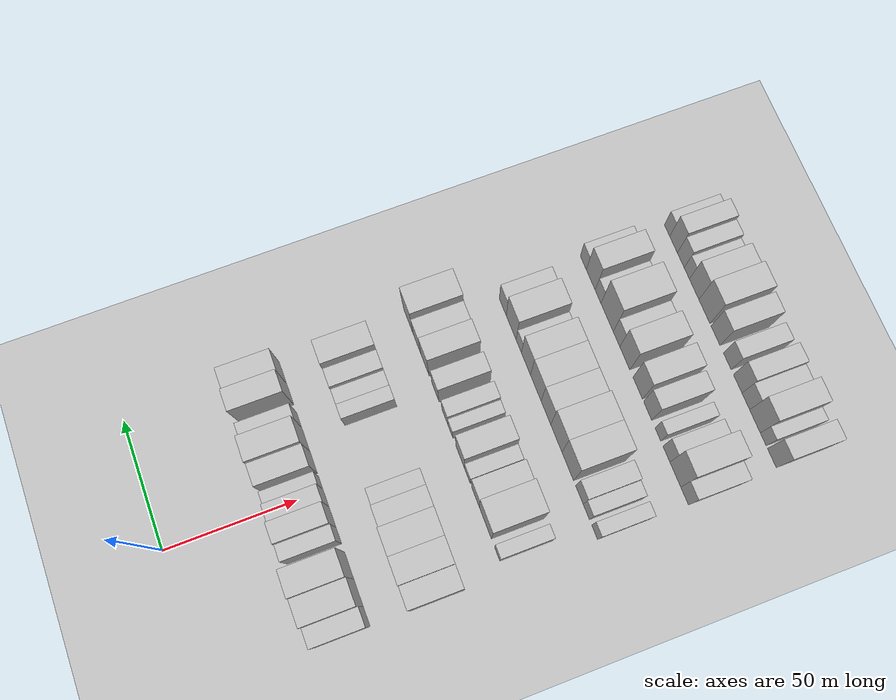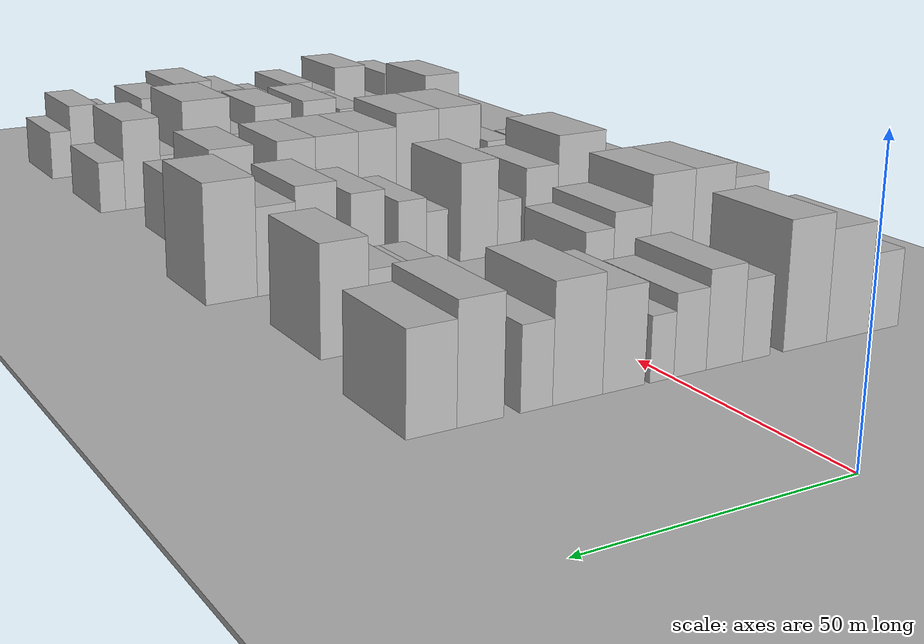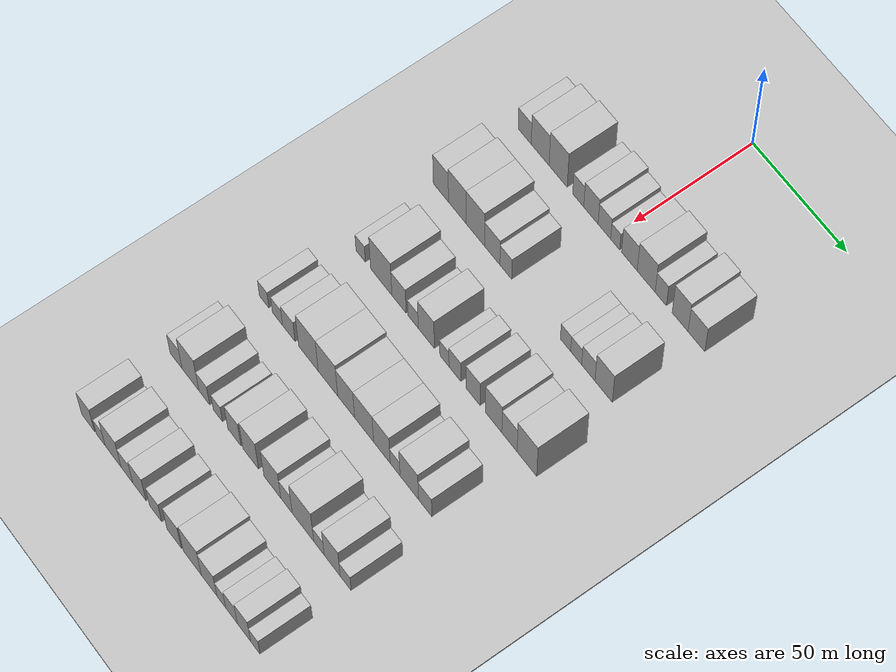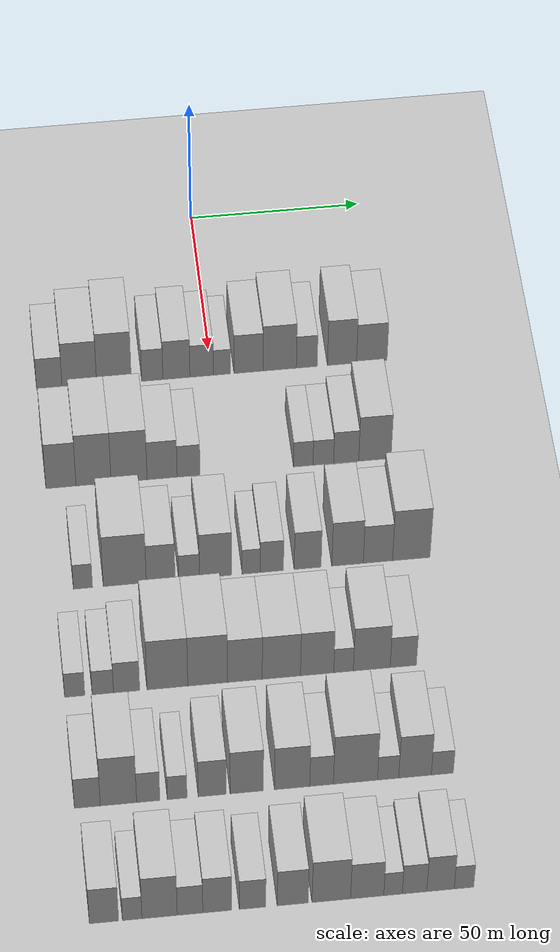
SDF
<sdf version="1.6">
 <world name="default">
  <include><name>ground_plane_1</name><uri>model://HANNAS_ground_plane</uri></include>
  <include>
   <name>ground_plane_2</name>
   <uri>model://HANNAS_ground_plane</uri>
   <pose>100 0 0  0 0 0</pose>
  </include>
  <model name="building_59">
   <static>1</static>
   <pose>50.0000 -46.9316 0 0.000000 0.000000 0.000000</pose>
   <link name="link">
    <pose>0 0 7.50 0 0 0</pose>
    <collision name="collision"><geometry><box><size>20.0000 7.3328 15.0000</size></box></geometry></collision>
    <visual name="visual">
     <cast_shadows>0</cast_shadows>
     <geometry><box><size>20.0000 7.3328 15.0000</size></box></geometry>
     <material>
      <script>
       <uri>model://HANNAS_wall/materials/scripts</uri>
       <uri>model://HANNAS_wall/materials/textures</uri>
       <name>vrc/HANNAS_wall</name>
      </script>
     </material>
    </visual>
   </link>
  </model>
  <model name="building_60">
   <static>1</static>
   <pose>50.0000 -38.2775 0 0.000000 0.000000 0.000000</pose>
   <link name="link">
    <pose>0 0 10.50 0 0 0</pose>
    <collision name="collision"><geometry><box><size>20.0000 9.9754 21.0000</size></box></geometry></collision>
    <visual name="visual">
     <cast_shadows>0</cast_shadows>
     <geometry><box><size>20.0000 9.9754 21.0000</size></box></geometry>
     <material>
      <script>
       <uri>model://HANNAS_wall/materials/scripts</uri>
       <uri>model://HANNAS_wall/materials/textures</uri>
       <name>vrc/HANNAS_wall</name>
      </script>
     </material>
    </visual>
   </link>
  </model>
  <model name="building_61">
   <static>1</static>
   <pose>50.0000 -28.2790 0 0.000000 0.000000 0.000000</pose>
   <link name="link">
    <pose>0 0 12.00 0 0 0</pose>
    <collision name="collision"><geometry><box><size>20.0000 10.0216 24.0000</size></box></geometry></collision>
    <visual name="visual">
     <cast_shadows>0</cast_shadows>
     <geometry><box><size>20.0000 10.0216 24.0000</size></box></geometry>
     <material>
      <script>
       <uri>model://HANNAS_wall/materials/scripts</uri>
       <uri>model://HANNAS_wall/materials/textures</uri>
       <name>vrc/HANNAS_wall</name>
      </script>
     </material>
    </visual>
   </link>
  </model>
  <model name="building_62">
   <static>1</static>
   <pose>50.0000 -17.2215 0 0.000000 0.000000 0.000000</pose>
   <link name="link">
    <pose>0 0 7.50 0 0 0</pose>
    <collision name="collision"><geometry><box><size>20.0000 6.0934 15.0000</size></box></geometry></collision>
    <visual name="visual">
     <cast_shadows>0</cast_shadows>
     <geometry><box><size>20.0000 6.0934 15.0000</size></box></geometry>
     <material>
      <script>
       <uri>model://HANNAS_wall/materials/scripts</uri>
       <uri>model://HANNAS_wall/materials/textures</uri>
       <name>vrc/HANNAS_wall</name>
      </script>
     </material>
    </visual>
   </link>
  </model>
  <model name="building_63">
   <static>1</static>
   <pose>50.0000 -10.2483 0 0.000000 0.000000 0.000000</pose>
   <link name="link">
    <pose>0 0 9.00 0 0 0</pose>
    <collision name="collision"><geometry><box><size>20.0000 7.8529 18.0000</size></box></geometry></collision>
    <visual name="visual">
     <cast_shadows>0</cast_shadows>
     <geometry><box><size>20.0000 7.8529 18.0000</size></box></geometry>
     <material>
      <script>
       <uri>model://HANNAS_wall/materials/scripts</uri>
       <uri>model://HANNAS_wall/materials/textures</uri>
       <name>vrc/HANNAS_wall</name>
      </script>
     </material>
    </visual>
   </link>
  </model>
  <model name="building_64">
   <static>1</static>
   <pose>50.0000 -2.9109 0 0.000000 0.000000 0.000000</pose>
   <link name="link">
    <pose>0 0 7.50 0 0 0</pose>
    <collision name="collision"><geometry><box><size>20.0000 6.8220 15.0000</size></box></geometry></collision>
    <visual name="visual">
     <cast_shadows>0</cast_shadows>
     <geometry><box><size>20.0000 6.8220 15.0000</size></box></geometry>
     <material>
      <script>
       <uri>model://HANNAS_wall/materials/scripts</uri>
       <uri>model://HANNAS_wall/materials/textures</uri>
       <name>vrc/HANNAS_wall</name>
      </script>
     </material>
    </visual>
   </link>
  </model>
  <model name="building_65">
   <static>1</static>
   <pose>50.0000 2.9775 0 0.000000 0.000000 0.000000</pose>
   <link name="link">
    <pose>0 0 6.00 0 0 0</pose>
    <collision name="collision"><geometry><box><size>20.0000 4.9548 12.0000</size></box></geometry></collision>
    <visual name="visual">
     <cast_shadows>0</cast_shadows>
     <geometry><box><size>20.0000 4.9548 12.0000</size></box></geometry>
     <material>
      <script>
       <uri>model://HANNAS_wall/materials/scripts</uri>
       <uri>model://HANNAS_wall/materials/textures</uri>
       <name>vrc/HANNAS_wall</name>
      </script>
     </material>
    </visual>
   </link>
  </model>
  <model name="building_66">
   <static>1</static>
   <pose>50.0000 10.6718 0 0.000000 0.000000 0.000000</pose>
   <link name="link">
    <pose>0 0 9.00 0 0 0</pose>
    <collision name="collision"><geometry><box><size>20.0000 8.4336 18.0000</size></box></geometry></collision>
    <visual name="visual">
     <cast_shadows>0</cast_shadows>
     <geometry><box><size>20.0000 8.4336 18.0000</size></box></geometry>
     <material>
      <script>
       <uri>model://HANNAS_wall/materials/scripts</uri>
       <uri>model://HANNAS_wall/materials/textures</uri>
       <name>vrc/HANNAS_wall</name>
      </script>
     </material>
    </visual>
   </link>
  </model>
  <model name="building_67">
   <static>1</static>
   <pose>50.0000 19.7252 0 0.000000 0.000000 0.000000</pose>
   <link name="link">
    <pose>0 0 10.50 0 0 0</pose>
    <collision name="collision"><geometry><box><size>20.0000 9.6732 21.0000</size></box></geometry></collision>
    <visual name="visual">
     <cast_shadows>0</cast_shadows>
     <geometry><box><size>20.0000 9.6732 21.0000</size></box></geometry>
     <material>
      <script>
       <uri>model://HANNAS_wall/materials/scripts</uri>
       <uri>model://HANNAS_wall/materials/textures</uri>
       <name>vrc/HANNAS_wall</name>
      </script>
     </material>
    </visual>
   </link>
  </model>
  <model name="building_68">
   <static>1</static>
   <pose>50.0000 27.5824 0 0.000000 0.000000 0.000000</pose>
   <link name="link">
    <pose>0 0 7.50 0 0 0</pose>
    <collision name="collision"><geometry><box><size>20.0000 6.0413 15.0000</size></box></geometry></collision>
    <visual name="visual">
     <cast_shadows>0</cast_shadows>
     <geometry><box><size>20.0000 6.0413 15.0000</size></box></geometry>
     <material>
      <script>
       <uri>model://HANNAS_wall/materials/scripts</uri>
       <uri>model://HANNAS_wall/materials/textures</uri>
       <name>vrc/HANNAS_wall</name>
      </script>
     </material>
    </visual>
   </link>
  </model>
  <model name="building_69">
   <static>1</static>
   <pose>50.0000 37.8333 0 0.000000 0.000000 0.000000</pose>
   <link name="link">
    <pose>0 0 10.50 0 0 0</pose>
    <collision name="collision"><geometry><box><size>20.0000 8.4605 21.0000</size></box></geometry></collision>
    <visual name="visual">
     <cast_shadows>0</cast_shadows>
     <geometry><box><size>20.0000 8.4605 21.0000</size></box></geometry>
     <material>
      <script>
       <uri>model://HANNAS_wall/materials/scripts</uri>
       <uri>model://HANNAS_wall/materials/textures</uri>
       <name>vrc/HANNAS_wall</name>
      </script>
     </material>
    </visual>
   </link>
  </model>
  <model name="building_70">
   <static>1</static>
   <pose>50.0000 46.5089 0 0.000000 0.000000 0.000000</pose>
   <link name="link">
    <pose>0 0 9.00 0 0 0</pose>
    <collision name="collision"><geometry><box><size>20.0000 8.8906 18.0000</size></box></geometry></collision>
    <visual name="visual">
     <cast_shadows>0</cast_shadows>
     <geometry><box><size>20.0000 8.8906 18.0000</size></box></geometry>
     <material>
      <script>
       <uri>model://HANNAS_wall/materials/scripts</uri>
       <uri>model://HANNAS_wall/materials/textures</uri>
       <name>vrc/HANNAS_wall</name>
      </script>
     </material>
    </visual>
   </link>
  </model>
  <model name="building_187">
   <static>1</static>
   <pose>85.0000 -46.3701 0 0.000000 0.000000 0.000000</pose>
   <link name="link">
    <pose>0 0 10.50 0 0 0</pose>
    <collision name="collision"><geometry><box><size>20.0000 8.5229 21.0000</size></box></geometry></collision>
    <visual name="visual">
     <cast_shadows>0</cast_shadows>
     <geometry><box><size>20.0000 8.5229 21.0000</size></box></geometry>
     <material>
      <script>
       <uri>model://HANNAS_wall/materials/scripts</uri>
       <uri>model://HANNAS_wall/materials/textures</uri>
       <name>vrc/HANNAS_wall</name>
      </script>
     </material>
    </visual>
   </link>
  </model>
  <model name="building_188">
   <static>1</static>
   <pose>85.0000 -37.1476 0 0.000000 0.000000 0.000000</pose>
   <link name="link">
    <pose>0 0 12.00 0 0 0</pose>
    <collision name="collision"><geometry><box><size>20.0000 9.9221 24.0000</size></box></geometry></collision>
    <visual name="visual">
     <cast_shadows>0</cast_shadows>
     <geometry><box><size>20.0000 9.9221 24.0000</size></box></geometry>
     <material>
      <script>
       <uri>model://HANNAS_wall/materials/scripts</uri>
       <uri>model://HANNAS_wall/materials/textures</uri>
       <name>vrc/HANNAS_wall</name>
      </script>
     </material>
    </visual>
   </link>
  </model>
  <model name="building_189">
   <static>1</static>
   <pose>85.0000 -27.0915 0 0.000000 0.000000 0.000000</pose>
   <link name="link">
    <pose>0 0 12.00 0 0 0</pose>
    <collision name="collision"><geometry><box><size>20.0000 10.1902 24.0000</size></box></geometry></collision>
    <visual name="visual">
     <cast_shadows>0</cast_shadows>
     <geometry><box><size>20.0000 10.1902 24.0000</size></box></geometry>
     <material>
      <script>
       <uri>model://HANNAS_wall/materials/scripts</uri>
       <uri>model://HANNAS_wall/materials/textures</uri>
       <name>vrc/HANNAS_wall</name>
      </script>
     </material>
    </visual>
   </link>
  </model>
  <model name="building_190">
   <static>1</static>
   <pose>85.0000 -17.7223 0 0.000000 0.000000 0.000000</pose>
   <link name="link">
    <pose>0 0 9.00 0 0 0</pose>
    <collision name="collision"><geometry><box><size>20.0000 8.5484 18.0000</size></box></geometry></collision>
    <visual name="visual">
     <cast_shadows>0</cast_shadows>
     <geometry><box><size>20.0000 8.5484 18.0000</size></box></geometry>
     <material>
      <script>
       <uri>model://HANNAS_wall/materials/scripts</uri>
       <uri>model://HANNAS_wall/materials/textures</uri>
       <name>vrc/HANNAS_wall</name>
      </script>
     </material>
    </visual>
   </link>
  </model>
  <model name="building_191">
   <static>1</static>
   <pose>85.0000 -10.2076 0 0.000000 0.000000 0.000000</pose>
   <link name="link">
    <pose>0 0 7.50 0 0 0</pose>
    <collision name="collision"><geometry><box><size>20.0000 6.4809 15.0000</size></box></geometry></collision>
    <visual name="visual">
     <cast_shadows>0</cast_shadows>
     <geometry><box><size>20.0000 6.4809 15.0000</size></box></geometry>
     <material>
      <script>
       <uri>model://HANNAS_wall/materials/scripts</uri>
       <uri>model://HANNAS_wall/materials/textures</uri>
       <name>vrc/HANNAS_wall</name>
      </script>
     </material>
    </visual>
   </link>
  </model>
  <model name="building_192">
   <static>1</static>
   <pose>85.0000 22.4130 0 0.000000 0.000000 0.000000</pose>
   <link name="link">
    <pose>0 0 6.00 0 0 0</pose>
    <collision name="collision"><geometry><box><size>20.0000 5.5868 12.0000</size></box></geometry></collision>
    <visual name="visual">
     <cast_shadows>0</cast_shadows>
     <geometry><box><size>20.0000 5.5868 12.0000</size></box></geometry>
     <material>
      <script>
       <uri>model://HANNAS_wall/materials/scripts</uri>
       <uri>model://HANNAS_wall/materials/textures</uri>
       <name>vrc/HANNAS_wall</name>
      </script>
     </material>
    </visual>
   </link>
  </model>
  <model name="building_193">
   <static>1</static>
   <pose>85.0000 28.1377 0 0.000000 0.000000 0.000000</pose>
   <link name="link">
    <pose>0 0 6.00 0 0 0</pose>
    <collision name="collision"><geometry><box><size>20.0000 5.8626 12.0000</size></box></geometry></collision>
    <visual name="visual">
     <cast_shadows>0</cast_shadows>
     <geometry><box><size>20.0000 5.8626 12.0000</size></box></geometry>
     <material>
      <script>
       <uri>model://HANNAS_wall/materials/scripts</uri>
       <uri>model://HANNAS_wall/materials/textures</uri>
       <name>vrc/HANNAS_wall</name>
      </script>
     </material>
    </visual>
   </link>
  </model>
  <model name="building_194">
   <static>1</static>
   <pose>85.0000 34.6536 0 0.000000 0.000000 0.000000</pose>
   <link name="link">
    <pose>0 0 7.50 0 0 0</pose>
    <collision name="collision"><geometry><box><size>20.0000 7.1690 15.0000</size></box></geometry></collision>
    <visual name="visual">
     <cast_shadows>0</cast_shadows>
     <geometry><box><size>20.0000 7.1690 15.0000</size></box></geometry>
     <material>
      <script>
       <uri>model://HANNAS_wall/materials/scripts</uri>
       <uri>model://HANNAS_wall/materials/textures</uri>
       <name>vrc/HANNAS_wall</name>
      </script>
     </material>
    </visual>
   </link>
  </model>
  <model name="building_195">
   <static>1</static>
   <pose>85.0000 42.8573 0 0.000000 0.000000 0.000000</pose>
   <link name="link">
    <pose>0 0 10.50 0 0 0</pose>
    <collision name="collision"><geometry><box><size>20.0000 9.2384 21.0000</size></box></geometry></collision>
    <visual name="visual">
     <cast_shadows>0</cast_shadows>
     <geometry><box><size>20.0000 9.2384 21.0000</size></box></geometry>
     <material>
      <script>
       <uri>model://HANNAS_wall/materials/scripts</uri>
       <uri>model://HANNAS_wall/materials/textures</uri>
       <name>vrc/HANNAS_wall</name>
      </script>
     </material>
    </visual>
   </link>
  </model>
  <model name="building_314">
   <static>1</static>
   <pose>120.0000 -43.0307 0 0.000000 0.000000 0.000000</pose>
   <link name="link">
    <pose>0 0 6.00 0 0 0</pose>
    <collision name="collision"><geometry><box><size>20.0000 5.2960 12.0000</size></box></geometry></collision>
    <visual name="visual">
     <cast_shadows>0</cast_shadows>
     <geometry><box><size>20.0000 5.2960 12.0000</size></box></geometry>
     <material>
      <script>
       <uri>model://HANNAS_wall/materials/scripts</uri>
       <uri>model://HANNAS_wall/materials/textures</uri>
       <name>vrc/HANNAS_wall</name>
      </script>
     </material>
    </visual>
   </link>
  </model>
  <model name="building_315">
   <static>1</static>
   <pose>120.0000 -31.4217 0 0.000000 0.000000 0.000000</pose>
   <link name="link">
    <pose>0 0 12.00 0 0 0</pose>
    <collision name="collision"><geometry><box><size>20.0000 11.9218 24.0000</size></box></geometry></collision>
    <visual name="visual">
     <cast_shadows>0</cast_shadows>
     <geometry><box><size>20.0000 11.9218 24.0000</size></box></geometry>
     <material>
      <script>
       <uri>model://HANNAS_wall/materials/scripts</uri>
       <uri>model://HANNAS_wall/materials/textures</uri>
       <name>vrc/HANNAS_wall</name>
      </script>
     </material>
    </visual>
   </link>
  </model>
  <model name="building_316">
   <static>1</static>
   <pose>120.0000 -21.4583 0 0.000000 0.000000 0.000000</pose>
   <link name="link">
    <pose>0 0 9.00 0 0 0</pose>
    <collision name="collision"><geometry><box><size>20.0000 8.0050 18.0000</size></box></geometry></collision>
    <visual name="visual">
     <cast_shadows>0</cast_shadows>
     <geometry><box><size>20.0000 8.0050 18.0000</size></box></geometry>
     <material>
      <script>
       <uri>model://HANNAS_wall/materials/scripts</uri>
       <uri>model://HANNAS_wall/materials/textures</uri>
       <name>vrc/HANNAS_wall</name>
      </script>
     </material>
    </visual>
   </link>
  </model>
  <model name="building_317">
   <static>1</static>
   <pose>120.0000 -13.5691 0 0.000000 0.000000 0.000000</pose>
   <link name="link">
    <pose>0 0 6.00 0 0 0</pose>
    <collision name="collision"><geometry><box><size>20.0000 5.7735 12.0000</size></box></geometry></collision>
    <visual name="visual">
     <cast_shadows>0</cast_shadows>
     <geometry><box><size>20.0000 5.7735 12.0000</size></box></geometry>
     <material>
      <script>
       <uri>model://HANNAS_wall/materials/scripts</uri>
       <uri>model://HANNAS_wall/materials/textures</uri>
       <name>vrc/HANNAS_wall</name>
      </script>
     </material>
    </visual>
   </link>
  </model>
  <model name="building_318">
   <static>1</static>
   <pose>120.0000 -6.2227 0 0.000000 0.000000 0.000000</pose>
   <link name="link">
    <pose>0 0 10.50 0 0 0</pose>
    <collision name="collision"><geometry><box><size>20.0000 8.9193 21.0000</size></box></geometry></collision>
    <visual name="visual">
     <cast_shadows>0</cast_shadows>
     <geometry><box><size>20.0000 8.9193 21.0000</size></box></geometry>
     <material>
      <script>
       <uri>model://HANNAS_wall/materials/scripts</uri>
       <uri>model://HANNAS_wall/materials/textures</uri>
       <name>vrc/HANNAS_wall</name>
      </script>
     </material>
    </visual>
   </link>
  </model>
  <model name="building_319">
   <static>1</static>
   <pose>120.0000 3.7449 0 0.000000 0.000000 0.000000</pose>
   <link name="link">
    <pose>0 0 6.00 0 0 0</pose>
    <collision name="collision"><geometry><box><size>20.0000 5.0158 12.0000</size></box></geometry></collision>
    <visual name="visual">
     <cast_shadows>0</cast_shadows>
     <geometry><box><size>20.0000 5.0158 12.0000</size></box></geometry>
     <material>
      <script>
       <uri>model://HANNAS_wall/materials/scripts</uri>
       <uri>model://HANNAS_wall/materials/textures</uri>
       <name>vrc/HANNAS_wall</name>
      </script>
     </material>
    </visual>
   </link>
  </model>
  <model name="building_320">
   <static>1</static>
   <pose>120.0000 9.4917 0 0.000000 0.000000 0.000000</pose>
   <link name="link">
    <pose>0 0 7.50 0 0 0</pose>
    <collision name="collision"><geometry><box><size>20.0000 6.4779 15.0000</size></box></geometry></collision>
    <visual name="visual">
     <cast_shadows>0</cast_shadows>
     <geometry><box><size>20.0000 6.4779 15.0000</size></box></geometry>
     <material>
      <script>
       <uri>model://HANNAS_wall/materials/scripts</uri>
       <uri>model://HANNAS_wall/materials/textures</uri>
       <name>vrc/HANNAS_wall</name>
      </script>
     </material>
    </visual>
   </link>
  </model>
  <model name="building_321">
   <static>1</static>
   <pose>120.0000 19.4871 0 0.000000 0.000000 0.000000</pose>
   <link name="link">
    <pose>0 0 9.00 0 0 0</pose>
    <collision name="collision"><geometry><box><size>20.0000 7.5130 18.0000</size></box></geometry></collision>
    <visual name="visual">
     <cast_shadows>0</cast_shadows>
     <geometry><box><size>20.0000 7.5130 18.0000</size></box></geometry>
     <material>
      <script>
       <uri>model://HANNAS_wall/materials/scripts</uri>
       <uri>model://HANNAS_wall/materials/textures</uri>
       <name>vrc/HANNAS_wall</name>
      </script>
     </material>
    </visual>
   </link>
  </model>
  <model name="building_322">
   <static>1</static>
   <pose>120.0000 30.6438 0 0.000000 0.000000 0.000000</pose>
   <link name="link">
    <pose>0 0 10.50 0 0 0</pose>
    <collision name="collision"><geometry><box><size>20.0000 8.8005 21.0000</size></box></geometry></collision>
    <visual name="visual">
     <cast_shadows>0</cast_shadows>
     <geometry><box><size>20.0000 8.8005 21.0000</size></box></geometry>
     <material>
      <script>
       <uri>model://HANNAS_wall/materials/scripts</uri>
       <uri>model://HANNAS_wall/materials/textures</uri>
       <name>vrc/HANNAS_wall</name>
      </script>
     </material>
    </visual>
   </link>
  </model>
  <model name="building_323">
   <static>1</static>
   <pose>120.0000 39.1478 0 0.000000 0.000000 0.000000</pose>
   <link name="link">
    <pose>0 0 9.00 0 0 0</pose>
    <collision name="collision"><geometry><box><size>20.0000 8.2075 18.0000</size></box></geometry></collision>
    <visual name="visual">
     <cast_shadows>0</cast_shadows>
     <geometry><box><size>20.0000 8.2075 18.0000</size></box></geometry>
     <material>
      <script>
       <uri>model://HANNAS_wall/materials/scripts</uri>
       <uri>model://HANNAS_wall/materials/textures</uri>
       <name>vrc/HANNAS_wall</name>
      </script>
     </material>
    </visual>
   </link>
  </model>
  <model name="building_324">
   <static>1</static>
   <pose>120.0000 48.4950 0 0.000000 0.000000 0.000000</pose>
   <link name="link">
    <pose>0 0 12.00 0 0 0</pose>
    <collision name="collision"><geometry><box><size>20.0000 10.4868 24.0000</size></box></geometry></collision>
    <visual name="visual">
     <cast_shadows>0</cast_shadows>
     <geometry><box><size>20.0000 10.4868 24.0000</size></box></geometry>
     <material>
      <script>
       <uri>model://HANNAS_wall/materials/scripts</uri>
       <uri>model://HANNAS_wall/materials/textures</uri>
       <name>vrc/HANNAS_wall</name>
      </script>
     </material>
    </visual>
   </link>
  </model>
  <model name="building_426">
   <static>1</static>
   <pose>155.0000 -48.1531 0 0.000000 0.000000 0.000000</pose>
   <link name="link">
    <pose>0 0 6.00 0 0 0</pose>
    <collision name="collision"><geometry><box><size>20.0000 5.4719 12.0000</size></box></geometry></collision>
    <visual name="visual">
     <cast_shadows>0</cast_shadows>
     <geometry><box><size>20.0000 5.4719 12.0000</size></box></geometry>
     <material>
      <script>
       <uri>model://HANNAS_wall/materials/scripts</uri>
       <uri>model://HANNAS_wall/materials/textures</uri>
       <name>vrc/HANNAS_wall</name>
      </script>
     </material>
    </visual>
   </link>
  </model>
  <model name="building_427">
   <static>1</static>
   <pose>155.0000 -40.5223 0 0.000000 0.000000 0.000000</pose>
   <link name="link">
    <pose>0 0 6.00 0 0 0</pose>
    <collision name="collision"><geometry><box><size>20.0000 5.7897 12.0000</size></box></geometry></collision>
    <visual name="visual">
     <cast_shadows>0</cast_shadows>
     <geometry><box><size>20.0000 5.7897 12.0000</size></box></geometry>
     <material>
      <script>
       <uri>model://HANNAS_wall/materials/scripts</uri>
       <uri>model://HANNAS_wall/materials/textures</uri>
       <name>vrc/HANNAS_wall</name>
      </script>
     </material>
    </visual>
   </link>
  </model>
  <model name="building_428">
   <static>1</static>
   <pose>155.0000 -34.0655 0 0.000000 0.000000 0.000000</pose>
   <link name="link">
    <pose>0 0 7.50 0 0 0</pose>
    <collision name="collision"><geometry><box><size>20.0000 7.1240 15.0000</size></box></geometry></collision>
    <visual name="visual">
     <cast_shadows>0</cast_shadows>
     <geometry><box><size>20.0000 7.1240 15.0000</size></box></geometry>
     <material>
      <script>
       <uri>model://HANNAS_wall/materials/scripts</uri>
       <uri>model://HANNAS_wall/materials/textures</uri>
       <name>vrc/HANNAS_wall</name>
      </script>
     </material>
    </visual>
   </link>
  </model>
  <model name="building_429">
   <static>1</static>
   <pose>155.0000 -22.9677 0 0.000000 0.000000 0.000000</pose>
   <link name="link">
    <pose>0 0 12.00 0 0 0</pose>
    <collision name="collision"><geometry><box><size>20.0000 11.0715 24.0000</size></box></geometry></collision>
    <visual name="visual">
     <cast_shadows>0</cast_shadows>
     <geometry><box><size>20.0000 11.0715 24.0000</size></box></geometry>
     <material>
      <script>
       <uri>model://HANNAS_wall/materials/scripts</uri>
       <uri>model://HANNAS_wall/materials/textures</uri>
       <name>vrc/HANNAS_wall</name>
      </script>
     </material>
    </visual>
   </link>
  </model>
  <model name="building_430">
   <static>1</static>
   <pose>155.0000 -11.9974 0 0.000000 0.000000 0.000000</pose>
   <link name="link">
    <pose>0 0 12.00 0 0 0</pose>
    <collision name="collision"><geometry><box><size>20.0000 10.8689 24.0000</size></box></geometry></collision>
    <visual name="visual">
     <cast_shadows>0</cast_shadows>
     <geometry><box><size>20.0000 10.8689 24.0000</size></box></geometry>
     <material>
      <script>
       <uri>model://HANNAS_wall/materials/scripts</uri>
       <uri>model://HANNAS_wall/materials/textures</uri>
       <name>vrc/HANNAS_wall</name>
      </script>
     </material>
    </visual>
   </link>
  </model>
  <model name="building_431">
   <static>1</static>
   <pose>155.0000 -1.8373 0 0.000000 0.000000 0.000000</pose>
   <link name="link">
    <pose>0 0 10.50 0 0 0</pose>
    <collision name="collision"><geometry><box><size>20.0000 9.4514 21.0000</size></box></geometry></collision>
    <visual name="visual">
     <cast_shadows>0</cast_shadows>
     <geometry><box><size>20.0000 9.4514 21.0000</size></box></geometry>
     <material>
      <script>
       <uri>model://HANNAS_wall/materials/scripts</uri>
       <uri>model://HANNAS_wall/materials/textures</uri>
       <name>vrc/HANNAS_wall</name>
      </script>
     </material>
    </visual>
   </link>
  </model>
  <model name="building_432">
   <static>1</static>
   <pose>155.0000 8.1238 0 0.000000 0.000000 0.000000</pose>
   <link name="link">
    <pose>0 0 10.50 0 0 0</pose>
    <collision name="collision"><geometry><box><size>20.0000 10.4708 21.0000</size></box></geometry></collision>
    <visual name="visual">
     <cast_shadows>0</cast_shadows>
     <geometry><box><size>20.0000 10.4708 21.0000</size></box></geometry>
     <material>
      <script>
       <uri>model://HANNAS_wall/materials/scripts</uri>
       <uri>model://HANNAS_wall/materials/textures</uri>
       <name>vrc/HANNAS_wall</name>
      </script>
     </material>
    </visual>
   </link>
  </model>
  <model name="building_433">
   <static>1</static>
   <pose>155.0000 17.9179 0 0.000000 0.000000 0.000000</pose>
   <link name="link">
    <pose>0 0 10.50 0 0 0</pose>
    <collision name="collision"><geometry><box><size>20.0000 9.1173 21.0000</size></box></geometry></collision>
    <visual name="visual">
     <cast_shadows>0</cast_shadows>
     <geometry><box><size>20.0000 9.1173 21.0000</size></box></geometry>
     <material>
      <script>
       <uri>model://HANNAS_wall/materials/scripts</uri>
       <uri>model://HANNAS_wall/materials/textures</uri>
       <name>vrc/HANNAS_wall</name>
      </script>
     </material>
    </visual>
   </link>
  </model>
  <model name="building_434">
   <static>1</static>
   <pose>155.0000 25.1606 0 0.000000 0.000000 0.000000</pose>
   <link name="link">
    <pose>0 0 6.00 0 0 0</pose>
    <collision name="collision"><geometry><box><size>20.0000 5.3679 12.0000</size></box></geometry></collision>
    <visual name="visual">
     <cast_shadows>0</cast_shadows>
     <geometry><box><size>20.0000 5.3679 12.0000</size></box></geometry>
     <material>
      <script>
       <uri>model://HANNAS_wall/materials/scripts</uri>
       <uri>model://HANNAS_wall/materials/textures</uri>
       <name>vrc/HANNAS_wall</name>
      </script>
     </material>
    </visual>
   </link>
  </model>
  <model name="building_435">
   <static>1</static>
   <pose>155.0000 32.8852 0 0.000000 0.000000 0.000000</pose>
   <link name="link">
    <pose>0 0 10.50 0 0 0</pose>
    <collision name="collision"><geometry><box><size>20.0000 10.0813 21.0000</size></box></geometry></collision>
    <visual name="visual">
     <cast_shadows>0</cast_shadows>
     <geometry><box><size>20.0000 10.0813 21.0000</size></box></geometry>
     <material>
      <script>
       <uri>model://HANNAS_wall/materials/scripts</uri>
       <uri>model://HANNAS_wall/materials/textures</uri>
       <name>vrc/HANNAS_wall</name>
      </script>
     </material>
    </visual>
   </link>
  </model>
  <model name="building_436">
   <static>1</static>
   <pose>155.0000 41.5309 0 0.000000 0.000000 0.000000</pose>
   <link name="link">
    <pose>0 0 7.50 0 0 0</pose>
    <collision name="collision"><geometry><box><size>20.0000 7.2103 15.0000</size></box></geometry></collision>
    <visual name="visual">
     <cast_shadows>0</cast_shadows>
     <geometry><box><size>20.0000 7.2103 15.0000</size></box></geometry>
     <material>
      <script>
       <uri>model://HANNAS_wall/materials/scripts</uri>
       <uri>model://HANNAS_wall/materials/textures</uri>
       <name>vrc/HANNAS_wall</name>
      </script>
     </material>
    </visual>
   </link>
  </model>
  <model name="building_549">
   <static>1</static>
   <pose>190.0000 -47.6364 0 0.000000 0.000000 0.000000</pose>
   <link name="link">
    <pose>0 0 7.50 0 0 0</pose>
    <collision name="collision"><geometry><box><size>20.0000 6.8822 15.0000</size></box></geometry></collision>
    <visual name="visual">
     <cast_shadows>0</cast_shadows>
     <geometry><box><size>20.0000 6.8822 15.0000</size></box></geometry>
     <material>
      <script>
       <uri>model://HANNAS_wall/materials/scripts</uri>
       <uri>model://HANNAS_wall/materials/textures</uri>
       <name>vrc/HANNAS_wall</name>
      </script>
     </material>
    </visual>
   </link>
  </model>
  <model name="building_550">
   <static>1</static>
   <pose>190.0000 -39.3620 0 0.000000 0.000000 0.000000</pose>
   <link name="link">
    <pose>0 0 12.00 0 0 0</pose>
    <collision name="collision"><geometry><box><size>20.0000 9.6667 24.0000</size></box></geometry></collision>
    <visual name="visual">
     <cast_shadows>0</cast_shadows>
     <geometry><box><size>20.0000 9.6667 24.0000</size></box></geometry>
     <material>
      <script>
       <uri>model://HANNAS_wall/materials/scripts</uri>
       <uri>model://HANNAS_wall/materials/textures</uri>
       <name>vrc/HANNAS_wall</name>
      </script>
     </material>
    </visual>
   </link>
  </model>
  <model name="building_551">
   <static>1</static>
   <pose>190.0000 -31.4356 0 0.000000 0.000000 0.000000</pose>
   <link name="link">
    <pose>0 0 7.50 0 0 0</pose>
    <collision name="collision"><geometry><box><size>20.0000 6.1861 15.0000</size></box></geometry></collision>
    <visual name="visual">
     <cast_shadows>0</cast_shadows>
     <geometry><box><size>20.0000 6.1861 15.0000</size></box></geometry>
     <material>
      <script>
       <uri>model://HANNAS_wall/materials/scripts</uri>
       <uri>model://HANNAS_wall/materials/textures</uri>
       <name>vrc/HANNAS_wall</name>
      </script>
     </material>
    </visual>
   </link>
  </model>
  <model name="building_552">
   <static>1</static>
   <pose>190.0000 -23.7228 0 0.000000 0.000000 0.000000</pose>
   <link name="link">
    <pose>0 0 6.00 0 0 0</pose>
    <collision name="collision"><geometry><box><size>20.0000 5.2394 12.0000</size></box></geometry></collision>
    <visual name="visual">
     <cast_shadows>0</cast_shadows>
     <geometry><box><size>20.0000 5.2394 12.0000</size></box></geometry>
     <material>
      <script>
       <uri>model://HANNAS_wall/materials/scripts</uri>
       <uri>model://HANNAS_wall/materials/textures</uri>
       <name>vrc/HANNAS_wall</name>
      </script>
     </material>
    </visual>
   </link>
  </model>
  <model name="building_553">
   <static>1</static>
   <pose>190.0000 -14.3463 0 0.000000 0.000000 0.000000</pose>
   <link name="link">
    <pose>0 0 9.00 0 0 0</pose>
    <collision name="collision"><geometry><box><size>20.0000 7.5136 18.0000</size></box></geometry></collision>
    <visual name="visual">
     <cast_shadows>0</cast_shadows>
     <geometry><box><size>20.0000 7.5136 18.0000</size></box></geometry>
     <material>
      <script>
       <uri>model://HANNAS_wall/materials/scripts</uri>
       <uri>model://HANNAS_wall/materials/textures</uri>
       <name>vrc/HANNAS_wall</name>
      </script>
     </material>
    </visual>
   </link>
  </model>
  <model name="building_554">
   <static>1</static>
   <pose>190.0000 -5.1630 0 0.000000 0.000000 0.000000</pose>
   <link name="link">
    <pose>0 0 10.50 0 0 0</pose>
    <collision name="collision"><geometry><box><size>20.0000 8.8531 21.0000</size></box></geometry></collision>
    <visual name="visual">
     <cast_shadows>0</cast_shadows>
     <geometry><box><size>20.0000 8.8531 21.0000</size></box></geometry>
     <material>
      <script>
       <uri>model://HANNAS_wall/materials/scripts</uri>
       <uri>model://HANNAS_wall/materials/textures</uri>
       <name>vrc/HANNAS_wall</name>
      </script>
     </material>
    </visual>
   </link>
  </model>
  <model name="building_555">
   <static>1</static>
   <pose>190.0000 6.9910 0 0.000000 0.000000 0.000000</pose>
   <link name="link">
    <pose>0 0 10.50 0 0 0</pose>
    <collision name="collision"><geometry><box><size>20.0000 9.4548 21.0000</size></box></geometry></collision>
    <visual name="visual">
     <cast_shadows>0</cast_shadows>
     <geometry><box><size>20.0000 9.4548 21.0000</size></box></geometry>
     <material>
      <script>
       <uri>model://HANNAS_wall/materials/scripts</uri>
       <uri>model://HANNAS_wall/materials/textures</uri>
       <name>vrc/HANNAS_wall</name>
      </script>
     </material>
    </visual>
   </link>
  </model>
  <model name="building_556">
   <static>1</static>
   <pose>190.0000 14.8792 0 0.000000 0.000000 0.000000</pose>
   <link name="link">
    <pose>0 0 7.50 0 0 0</pose>
    <collision name="collision"><geometry><box><size>20.0000 6.3217 15.0000</size></box></geometry></collision>
    <visual name="visual">
     <cast_shadows>0</cast_shadows>
     <geometry><box><size>20.0000 6.3217 15.0000</size></box></geometry>
     <material>
      <script>
       <uri>model://HANNAS_wall/materials/scripts</uri>
       <uri>model://HANNAS_wall/materials/textures</uri>
       <name>vrc/HANNAS_wall</name>
      </script>
     </material>
    </visual>
   </link>
  </model>
  <model name="building_557">
   <static>1</static>
   <pose>190.0000 23.9628 0 0.000000 0.000000 0.000000</pose>
   <link name="link">
    <pose>0 0 12.00 0 0 0</pose>
    <collision name="collision"><geometry><box><size>20.0000 11.8454 24.0000</size></box></geometry></collision>
    <visual name="visual">
     <cast_shadows>0</cast_shadows>
     <geometry><box><size>20.0000 11.8454 24.0000</size></box></geometry>
     <material>
      <script>
       <uri>model://HANNAS_wall/materials/scripts</uri>
       <uri>model://HANNAS_wall/materials/textures</uri>
       <name>vrc/HANNAS_wall</name>
      </script>
     </material>
    </visual>
   </link>
  </model>
  <model name="building_558">
   <static>1</static>
   <pose>190.0000 32.7306 0 0.000000 0.000000 0.000000</pose>
   <link name="link">
    <pose>0 0 6.00 0 0 0</pose>
    <collision name="collision"><geometry><box><size>20.0000 5.6902 12.0000</size></box></geometry></collision>
    <visual name="visual">
     <cast_shadows>0</cast_shadows>
     <geometry><box><size>20.0000 5.6902 12.0000</size></box></geometry>
     <material>
      <script>
       <uri>model://HANNAS_wall/materials/scripts</uri>
       <uri>model://HANNAS_wall/materials/textures</uri>
       <name>vrc/HANNAS_wall</name>
      </script>
     </material>
    </visual>
   </link>
  </model>
  <model name="building_559">
   <static>1</static>
   <pose>190.0000 39.9624 0 0.000000 0.000000 0.000000</pose>
   <link name="link">
    <pose>0 0 10.50 0 0 0</pose>
    <collision name="collision"><geometry><box><size>20.0000 8.7734 21.0000</size></box></geometry></collision>
    <visual name="visual">
     <cast_shadows>0</cast_shadows>
     <geometry><box><size>20.0000 8.7734 21.0000</size></box></geometry>
     <material>
      <script>
       <uri>model://HANNAS_wall/materials/scripts</uri>
       <uri>model://HANNAS_wall/materials/textures</uri>
       <name>vrc/HANNAS_wall</name>
      </script>
     </material>
    </visual>
   </link>
  </model>
  <model name="building_560">
   <static>1</static>
   <pose>190.0000 47.3094 0 0.000000 0.000000 0.000000</pose>
   <link name="link">
    <pose>0 0 6.00 0 0 0</pose>
    <collision name="collision"><geometry><box><size>20.0000 5.9206 12.0000</size></box></geometry></collision>
    <visual name="visual">
     <cast_shadows>0</cast_shadows>
     <geometry><box><size>20.0000 5.9206 12.0000</size></box></geometry>
     <material>
      <script>
       <uri>model://HANNAS_wall/materials/scripts</uri>
       <uri>model://HANNAS_wall/materials/textures</uri>
       <name>vrc/HANNAS_wall</name>
      </script>
     </material>
    </visual>
   </link>
  </model>
  <model name="building_680">
   <static>1</static>
   <pose>225.0000 -46.2192 0 0.000000 0.000000 0.000000</pose>
   <link name="link">
    <pose>0 0 9.00 0 0 0</pose>
    <collision name="collision"><geometry><box><size>20.0000 7.5937 18.0000</size></box></geometry></collision>
    <visual name="visual">
     <cast_shadows>0</cast_shadows>
     <geometry><box><size>20.0000 7.5937 18.0000</size></box></geometry>
     <material>
      <script>
       <uri>model://HANNAS_wall/materials/scripts</uri>
       <uri>model://HANNAS_wall/materials/textures</uri>
       <name>vrc/HANNAS_wall</name>
      </script>
     </material>
    </visual>
   </link>
  </model>
  <model name="building_681">
   <static>1</static>
   <pose>225.0000 -38.8796 0 0.000000 0.000000 0.000000</pose>
   <link name="link">
    <pose>0 0 6.00 0 0 0</pose>
    <collision name="collision"><geometry><box><size>20.0000 5.0856 12.0000</size></box></geometry></collision>
    <visual name="visual">
     <cast_shadows>0</cast_shadows>
     <geometry><box><size>20.0000 5.0856 12.0000</size></box></geometry>
     <material>
      <script>
       <uri>model://HANNAS_wall/materials/scripts</uri>
       <uri>model://HANNAS_wall/materials/textures</uri>
       <name>vrc/HANNAS_wall</name>
      </script>
     </material>
    </visual>
   </link>
  </model>
  <model name="building_682">
   <static>1</static>
   <pose>225.0000 -31.7418 0 0.000000 0.000000 0.000000</pose>
   <link name="link">
    <pose>0 0 10.50 0 0 0</pose>
    <collision name="collision"><geometry><box><size>20.0000 9.1901 21.0000</size></box></geometry></collision>
    <visual name="visual">
     <cast_shadows>0</cast_shadows>
     <geometry><box><size>20.0000 9.1901 21.0000</size></box></geometry>
     <material>
      <script>
       <uri>model://HANNAS_wall/materials/scripts</uri>
       <uri>model://HANNAS_wall/materials/textures</uri>
       <name>vrc/HANNAS_wall</name>
      </script>
     </material>
    </visual>
   </link>
  </model>
  <model name="building_683">
   <static>1</static>
   <pose>225.0000 -23.8001 0 0.000000 0.000000 0.000000</pose>
   <link name="link">
    <pose>0 0 7.50 0 0 0</pose>
    <collision name="collision"><geometry><box><size>20.0000 6.6933 15.0000</size></box></geometry></collision>
    <visual name="visual">
     <cast_shadows>0</cast_shadows>
     <geometry><box><size>20.0000 6.6933 15.0000</size></box></geometry>
     <material>
      <script>
       <uri>model://HANNAS_wall/materials/scripts</uri>
       <uri>model://HANNAS_wall/materials/textures</uri>
       <name>vrc/HANNAS_wall</name>
      </script>
     </material>
    </visual>
   </link>
  </model>
  <model name="building_684">
   <static>1</static>
   <pose>225.0000 -16.6884 0 0.000000 0.000000 0.000000</pose>
   <link name="link">
    <pose>0 0 9.00 0 0 0</pose>
    <collision name="collision"><geometry><box><size>20.0000 7.5300 18.0000</size></box></geometry></collision>
    <visual name="visual">
     <cast_shadows>0</cast_shadows>
     <geometry><box><size>20.0000 7.5300 18.0000</size></box></geometry>
     <material>
      <script>
       <uri>model://HANNAS_wall/materials/scripts</uri>
       <uri>model://HANNAS_wall/materials/textures</uri>
       <name>vrc/HANNAS_wall</name>
      </script>
     </material>
    </visual>
   </link>
  </model>
  <model name="building_685">
   <static>1</static>
   <pose>225.0000 -7.4641 0 0.000000 0.000000 0.000000</pose>
   <link name="link">
    <pose>0 0 7.50 0 0 0</pose>
    <collision name="collision"><geometry><box><size>20.0000 6.9185 15.0000</size></box></geometry></collision>
    <visual name="visual">
     <cast_shadows>0</cast_shadows>
     <geometry><box><size>20.0000 6.9185 15.0000</size></box></geometry>
     <material>
      <script>
       <uri>model://HANNAS_wall/materials/scripts</uri>
       <uri>model://HANNAS_wall/materials/textures</uri>
       <name>vrc/HANNAS_wall</name>
      </script>
     </material>
    </visual>
   </link>
  </model>
  <model name="building_686">
   <static>1</static>
   <pose>225.0000 3.0542 0 0.000000 0.000000 0.000000</pose>
   <link name="link">
    <pose>0 0 9.00 0 0 0</pose>
    <collision name="collision"><geometry><box><size>20.0000 8.1182 18.0000</size></box></geometry></collision>
    <visual name="visual">
     <cast_shadows>0</cast_shadows>
     <geometry><box><size>20.0000 8.1182 18.0000</size></box></geometry>
     <material>
      <script>
       <uri>model://HANNAS_wall/materials/scripts</uri>
       <uri>model://HANNAS_wall/materials/textures</uri>
       <name>vrc/HANNAS_wall</name>
      </script>
     </material>
    </visual>
   </link>
  </model>
  <model name="building_687">
   <static>1</static>
   <pose>225.0000 13.1724 0 0.000000 0.000000 0.000000</pose>
   <link name="link">
    <pose>0 0 10.50 0 0 0</pose>
    <collision name="collision"><geometry><box><size>20.0000 10.1182 21.0000</size></box></geometry></collision>
    <visual name="visual">
     <cast_shadows>0</cast_shadows>
     <geometry><box><size>20.0000 10.1182 21.0000</size></box></geometry>
     <material>
      <script>
       <uri>model://HANNAS_wall/materials/scripts</uri>
       <uri>model://HANNAS_wall/materials/textures</uri>
       <name>vrc/HANNAS_wall</name>
      </script>
     </material>
    </visual>
   </link>
  </model>
  <model name="building_688">
   <static>1</static>
   <pose>225.0000 22.5967 0 0.000000 0.000000 0.000000</pose>
   <link name="link">
    <pose>0 0 9.00 0 0 0</pose>
    <collision name="collision"><geometry><box><size>20.0000 8.7305 18.0000</size></box></geometry></collision>
    <visual name="visual">
     <cast_shadows>0</cast_shadows>
     <geometry><box><size>20.0000 8.7305 18.0000</size></box></geometry>
     <material>
      <script>
       <uri>model://HANNAS_wall/materials/scripts</uri>
       <uri>model://HANNAS_wall/materials/textures</uri>
       <name>vrc/HANNAS_wall</name>
      </script>
     </material>
    </visual>
   </link>
  </model>
  <model name="building_689">
   <static>1</static>
   <pose>225.0000 29.3917 0 0.000000 0.000000 0.000000</pose>
   <link name="link">
    <pose>0 0 6.00 0 0 0</pose>
    <collision name="collision"><geometry><box><size>20.0000 4.8593 12.0000</size></box></geometry></collision>
    <visual name="visual">
     <cast_shadows>0</cast_shadows>
     <geometry><box><size>20.0000 4.8593 12.0000</size></box></geometry>
     <material>
      <script>
       <uri>model://HANNAS_wall/materials/scripts</uri>
       <uri>model://HANNAS_wall/materials/textures</uri>
       <name>vrc/HANNAS_wall</name>
      </script>
     </material>
    </visual>
   </link>
  </model>
  <model name="building_690">
   <static>1</static>
   <pose>225.0000 35.0390 0 0.000000 0.000000 0.000000</pose>
   <link name="link">
    <pose>0 0 7.50 0 0 0</pose>
    <collision name="collision"><geometry><box><size>20.0000 6.4353 15.0000</size></box></geometry></collision>
    <visual name="visual">
     <cast_shadows>0</cast_shadows>
     <geometry><box><size>20.0000 6.4353 15.0000</size></box></geometry>
     <material>
      <script>
       <uri>model://HANNAS_wall/materials/scripts</uri>
       <uri>model://HANNAS_wall/materials/textures</uri>
       <name>vrc/HANNAS_wall</name>
      </script>
     </material>
    </visual>
   </link>
  </model>
  <model name="building_691">
   <static>1</static>
   <pose>225.0000 41.8776 0 0.000000 0.000000 0.000000</pose>
   <link name="link">
    <pose>0 0 9.00 0 0 0</pose>
    <collision name="collision"><geometry><box><size>20.0000 7.2420 18.0000</size></box></geometry></collision>
    <visual name="visual">
     <cast_shadows>0</cast_shadows>
     <geometry><box><size>20.0000 7.2420 18.0000</size></box></geometry>
     <material>
      <script>
       <uri>model://HANNAS_wall/materials/scripts</uri>
       <uri>model://HANNAS_wall/materials/textures</uri>
       <name>vrc/HANNAS_wall</name>
      </script>
     </material>
    </visual>
   </link>
  </model>
  <model name="building_692">
   <static>1</static>
   <pose>225.0000 48.0608 0 0.000000 0.000000 0.000000</pose>
   <link name="link">
    <pose>0 0 6.00 0 0 0</pose>
    <collision name="collision"><geometry><box><size>20.0000 5.1244 12.0000</size></box></geometry></collision>
    <visual name="visual">
     <cast_shadows>0</cast_shadows>
     <geometry><box><size>20.0000 5.1244 12.0000</size></box></geometry>
     <material>
      <script>
       <uri>model://HANNAS_wall/materials/scripts</uri>
       <uri>model://HANNAS_wall/materials/textures</uri>
       <name>vrc/HANNAS_wall</name>
      </script>
     </material>
    </visual>
   </link>
  </model>
 </world>
</sdf>
